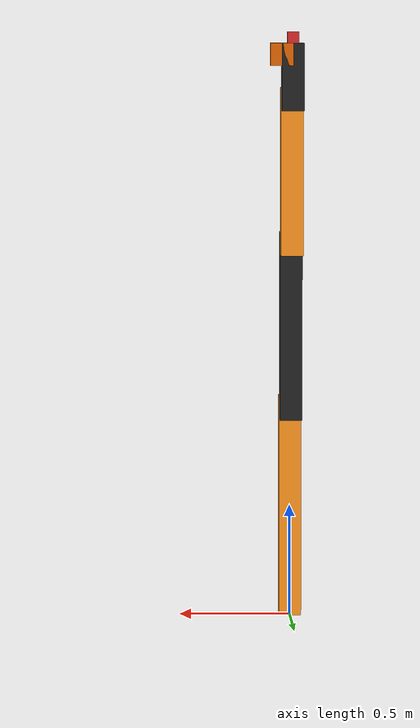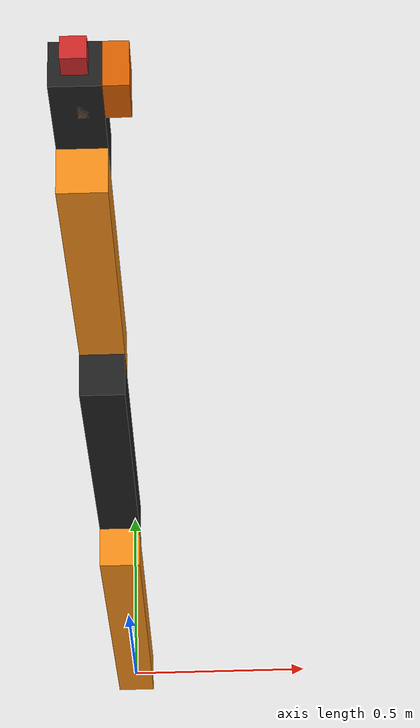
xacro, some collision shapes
<?xml version="1.0"?>
<!-- Revolute-Revolute Manipulator -->
<robot name="rrbot" xmlns:xacro="http://www.ros.org/wiki/xacro">

  <!-- Constants for robot dimensions -->
  <xacro:property name="PI" value="3.1415926535897931"/>
  <xacro:property name="mass1" value="1" />
  <xacro:property name="mass2" value="1" />
  <xacro:property name="mass3" value="1" />
  <xacro:property name="mass4" value="0.5" /><!-- arbitrary value for mass -->
  <xacro:property name="width" value="0.1" /> <!-- Square dimensions (widthxwidth) of beams -->
  <xacro:property name="height1" value="1" /> <!-- Link 1 -->
  <xacro:property name="height2" value="0.85" /> <!-- Link 2 -->
  <xacro:property name="height3" value="0.75" /> <!-- Link 3 -->
  <xacro:property name="height4" value="0.3" /> <!-- Link 4 -->
  <xacro:property name="camera_link" value="0.05" /> <!-- Size of square 'camera' box -->
  <xacro:property name="axel_offset" value="0.05" /> <!-- Space btw top of beam and the each joint -->

  <!-- Import all Gazebo-customization elements, including Gazebo colors -->
  <xacro:include filename="$(find rrbot_description)/urdf/rrbot.gazebo" />
  <!-- Import Rviz colors -->
  <xacro:include filename="$(find rrbot_description)/urdf/materials.xacro" />

  <!-- Used for fixing robot to Gazebo 'base_link' -->
  <link name="world"/>

  <joint name="fixed" type="fixed">
    <parent link="world"/>
    <child link="link1"/>
  </joint>

  <!-- Base Link -->
  <link name="link1">
    <collision>
      <origin xyz="0 0 ${height1/2}" rpy="0 0 0"/>
      <geometry>
	<box size="${width} ${width} ${height1}"/>
      </geometry>
    </collision>

    <visual>
      <origin xyz="0 0 ${height1/2}" rpy="0 0 0"/>
      <geometry>
	<box size="${width} ${width} ${height1}"/>
      </geometry>
      <material name="orange"/>
    </visual>

    <inertial>
      <origin xyz="0 0 ${height1/2}" rpy="0 0 0"/>
      <mass value="${mass1}"/>
      <inertia
	  ixx="${mass1 / 12.0 * (width*width + height1*height1)}" ixy="0.0" ixz="0.0"
	  iyy="${mass1 / 12.0 * (height1*height1 + width*width)}" iyz="0.0"
	  izz="${mass1 / 12.0 * (width*width + width*width)}"/>
    </inertial>
  </link>

  <joint name="joint1" type="continuous">
    <parent link="link1"/>
    <child link="link2"/>
    <origin xyz="0 ${width} ${height1 - axel_offset}" rpy="0 0 0"/>
    <axis xyz="0 1 0"/>
    <dynamics damping="0.7"/>
  </joint>

  <!-- shoulder Link -->
  <link name="link2">
    <collision>
      <origin xyz="0 0 ${height2/2 - axel_offset}" rpy="0 0 0"/>
      <geometry>
	<box size="${width} ${width} ${height2}"/>
      </geometry>
    </collision>

    <visual>
      <origin xyz="0 0 ${height2/2 - axel_offset}" rpy="0 0 0"/>
      <geometry>
	<box size="${width} ${width} ${height2}"/>
      </geometry>
      <material name="black"/>
    </visual>

    <inertial>
      <origin xyz="0 0 ${height2/2 - axel_offset}" rpy="0 0 0"/>
      <mass value="${mass2}"/>
      <inertia
	  ixx="${mass2 / 12.0 * (width*width + height2*height2)}" ixy="0.0" ixz="0.0"
	  iyy="${mass2 / 12.0 * (height2*height2 + width*width)}" iyz="0.0"
	  izz="${mass2 / 12.0 * (width*width + width*width)}"/>
    </inertial>
  </link>

  <joint name="joint2" type="continuous">
    <parent link="link2"/>
    <child link="link3"/>
    <origin xyz="0 ${width} ${height2 - axel_offset*2}" rpy="0 0 0"/>
    <axis xyz="0 1 0"/>
    <dynamics damping="0.7"/>
  </joint>

  <!-- elbow Link -->
  <link name="link3">
    <collision>
      <origin xyz="0 0 ${height3/2 - axel_offset}" rpy="0 0 0"/>
      <geometry>
	<box size="${width} ${width} ${height3}"/>
      </geometry>
    </collision>

    <visual>
      <origin xyz="0 0 ${height3/2 - axel_offset}" rpy="0 0 0"/>
      <geometry>
	<box size="${width} ${width} ${height3}"/>
      </geometry>
      <material name="orange"/>
    </visual>

    <inertial>
      <origin xyz="0 0 ${height3/2 - axel_offset}" rpy="0 0 0"/>
      <mass value="${mass3}"/>
      <inertia
	  ixx="${mass3 / 12.0 * (width*width + height3*height3)}" ixy="0.0" ixz="0.0"
	  iyy="${mass3 / 12.0 * (height3*height3 + width*width)}" iyz="0.0"
	  izz="${mass3 / 12.0 * (width*width + width*width)}"/>
    </inertial>
  </link>

  <joint name="joint3" type="continuous">
    <parent link="link3"/>
    <child link="link4"/>
    <origin xyz="0 ${width} ${height3 - axel_offset*2}" rpy="0 0 0"/>
    <axis xyz="0 1 0"/>
    <dynamics damping="0.7"/>
  </joint>

  <!-- Top Link -->
  <link name="link4">
    <collision>
      <origin xyz="0 0 ${height4/2 - axel_offset}" rpy="0 0 0"/>
      <geometry>
	<box size="${width} ${width} ${height4}"/>
      </geometry>
    </collision>

    <visual>
      <origin xyz="0 0 ${height4/2 - axel_offset}" rpy="0 0 0"/>
      <geometry>
	<box size="${width} ${width} ${height4}"/>
      </geometry>
      <material name="black"/>
    </visual>

    <inertial>
      <origin xyz="0 0 ${height4/2 - axel_offset}" rpy="0 0 0"/>
      <mass value="${mass4}"/>
      <inertia
	  ixx="${mass4 / 12.0 * (width*width + height4*height4)}" ixy="0.0" ixz="0.0"
	  iyy="${mass4 / 12.0 * (height4*height4 + width*width)}" iyz="0.0"
	  izz="${mass4 / 12.0 * (width*width + width*width)}"/>
    </inertial>
  </link>

  <joint name="hokuyo_joint" type="fixed">
    <axis xyz="0 1 0" />
    <origin xyz="${camera_link} 0 ${height4 - axel_offset*2}" rpy="0 0 0"/>
    <parent link="link4"/>
    <child link="hokuyo_link"/>
  </joint>

  <!-- Hokuyo Laser -->
  <link name="hokuyo_link">
    <collision>
      <origin xyz="0 0 0" rpy="0 0 0"/>
      <geometry>
	<box size="0.1 0.1 0.1"/>
      </geometry>
    </collision>

    <visual>
      <origin xyz="0 0 0" rpy="0 0 0"/>
      <geometry>
        <mesh filename="package://rrbot_description/meshes/hokuyo.dae"/>
      </geometry>
    </visual>

    <inertial>
      <mass value="1e-5" />
      <origin xyz="0 0 0" rpy="0 0 0"/>
      <inertia ixx="1e-6" ixy="0" ixz="0" iyy="1e-6" iyz="0" izz="1e-6" />
    </inertial>
  </link>

  <joint name="camera_joint" type="fixed">
    <axis xyz="0 1 0" />
    <origin xyz="0 0 ${height4 - axel_offset/2}" rpy="0 0 0"/>
    <parent link="link4"/>
    <child link="camera_link"/>
  </joint>

  <!-- Camera -->
  <link name="camera_link">
    <collision>
      <origin xyz="0 0 0" rpy="0 0 0"/>
      <geometry>
	<box size="${camera_link} ${camera_link} ${camera_link}"/>
      </geometry>
    </collision>

    <visual>
      <origin xyz="0 0 0" rpy="0 0 0"/>
      <geometry>
	<box size="${camera_link} ${camera_link} ${camera_link}"/>
      </geometry>
      <material name="red"/>
    </visual>

    <inertial>
      <mass value="1e-5" />
      <origin xyz="0 0 0" rpy="0 0 0"/>
      <inertia ixx="1e-6" ixy="0" ixz="0" iyy="1e-6" iyz="0" izz="1e-6" />
    </inertial>
  </link>

  <!-- generate an optical frame http://www.ros.org/reps/rep-0103.html#suffix-frames
      so that ros and opencv can operate on the camera frame correctly -->
  <joint name="camera_optical_joint" type="fixed">
    <!-- these values have to be these values otherwise the gazebo camera image
        won't be aligned properly with the frame it is supposedly originating from -->
    <origin xyz="0 0 0" rpy="${-pi/2} 0 ${-pi/2}"/>
    <parent link="camera_link"/>
    <child link="camera_link_optical"/>
  </joint>

  <link name="camera_link_optical">
  </link>

  <transmission name="tran1">
    <type>transmission_interface/SimpleTransmission</type>
    <joint name="joint1">
      <hardwareInterface>hardware_interface/EffortJointInterface</hardwareInterface>
    </joint>
    <actuator name="motor1">
      <hardwareInterface>hardware_interface/EffortJointInterface</hardwareInterface>
      <mechanicalReduction>1</mechanicalReduction>
    </actuator>
  </transmission>

  <transmission name="tran2">
    <type>transmission_interface/SimpleTransmission</type>
    <joint name="joint2">
      <hardwareInterface>hardware_interface/EffortJointInterface</hardwareInterface>
    </joint>
    <actuator name="motor2">
      <hardwareInterface>hardware_interface/EffortJointInterface</hardwareInterface>
      <mechanicalReduction>1</mechanicalReduction>
    </actuator>
  </transmission>

    <transmission name="tran3">
    <type>transmission_interface/SimpleTransmission</type>
    <joint name="joint3">
      <hardwareInterface>hardware_interface/EffortJointInterface</hardwareInterface>
    </joint>
    <actuator name="motor3">
      <hardwareInterface>hardware_interface/EffortJointInterface</hardwareInterface>
      <mechanicalReduction>1</mechanicalReduction>
    </actuator>
  </transmission>

</robot>
